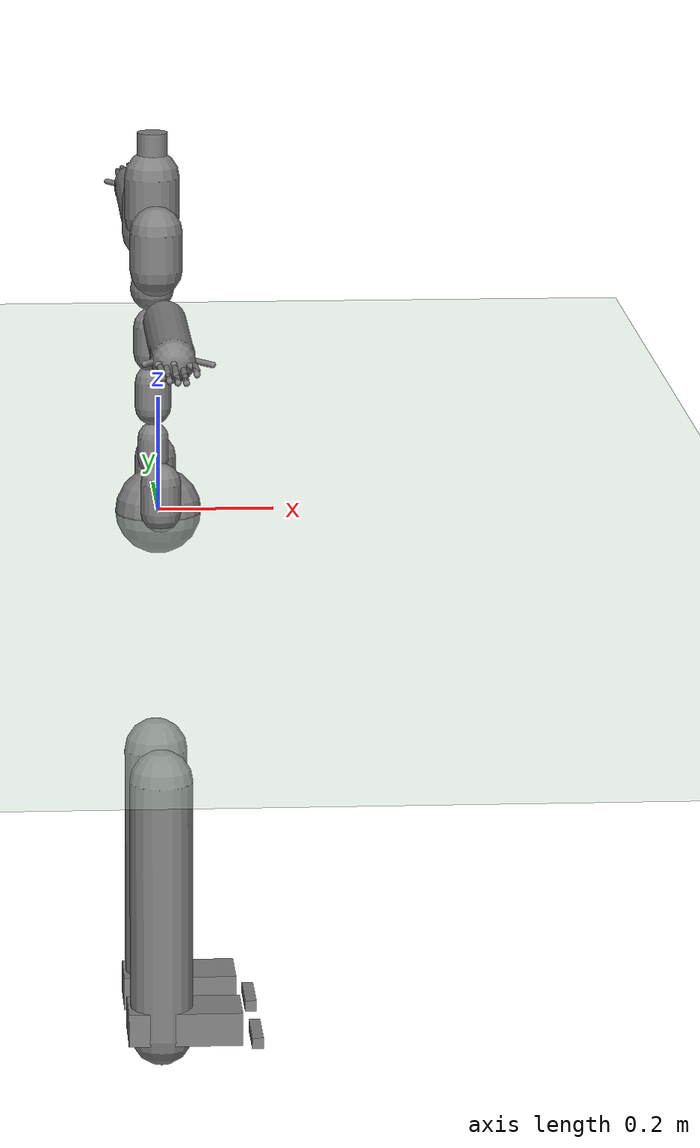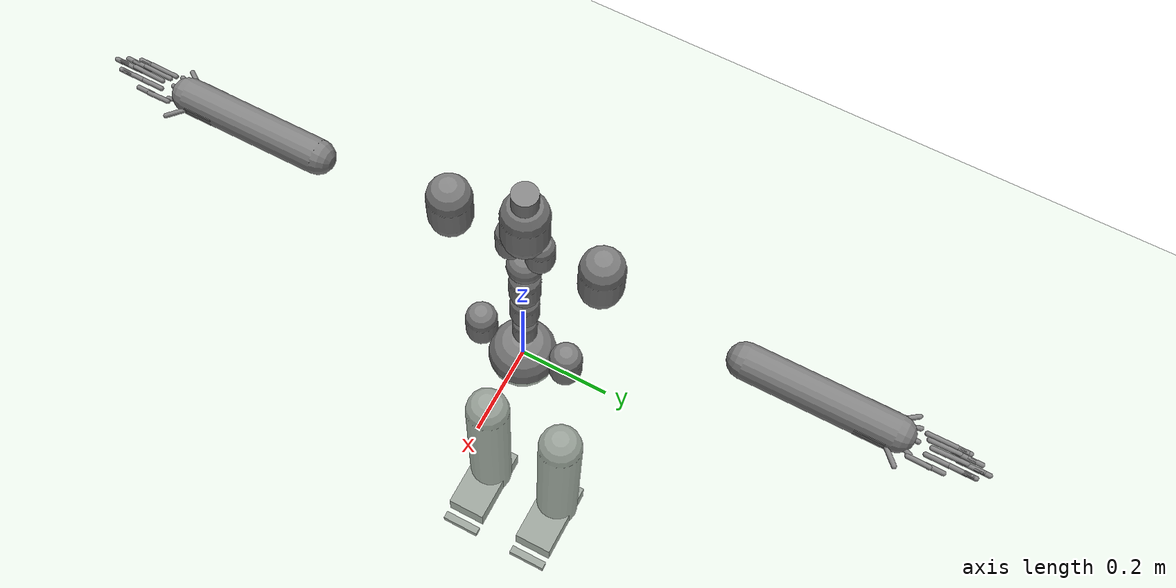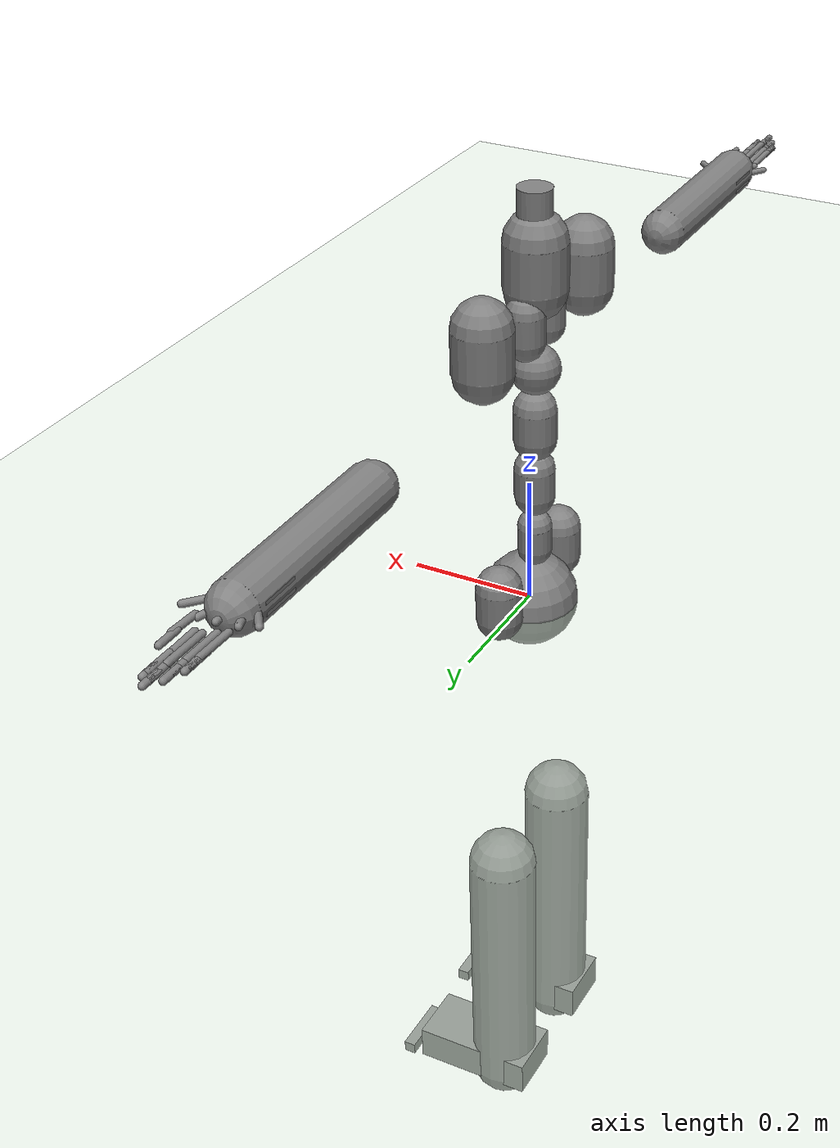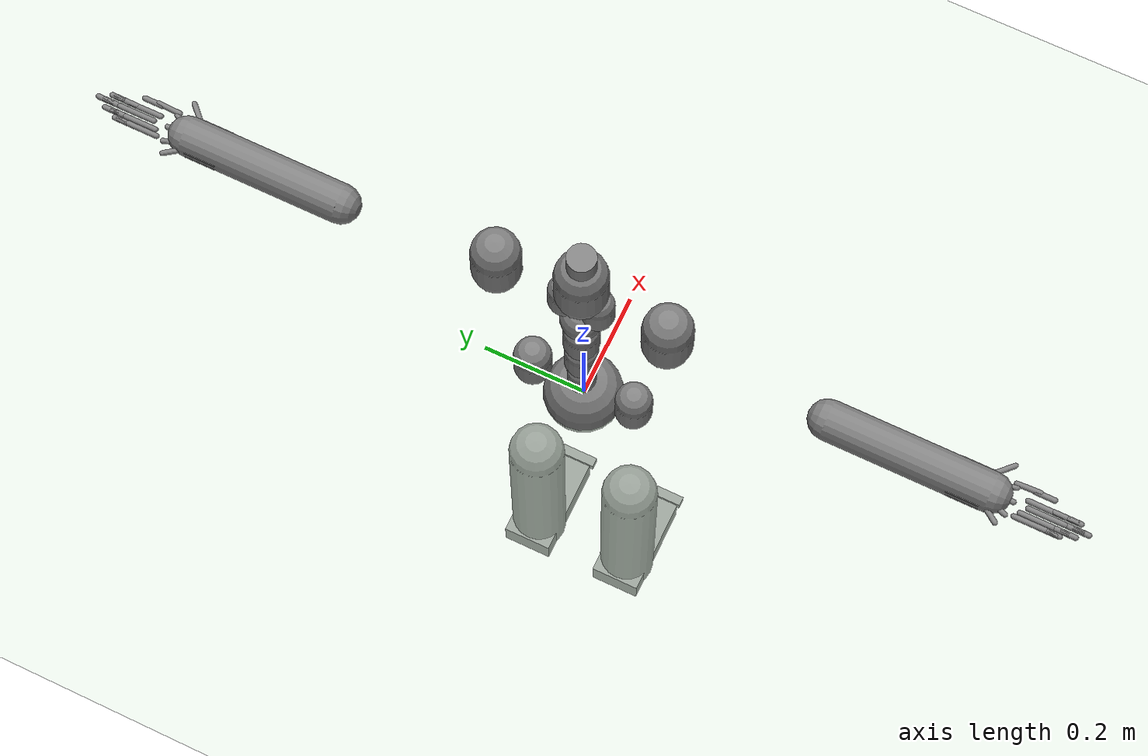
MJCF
<?xml version="1.0" ?>
<mujoco model="humanoid">
  <compiler coordinate="local"/>
  <statistic extent="2" center="0 0 1"/>
  <option timestep="0.00555"/>
  <default>
    <motor ctrlrange="-1 1" ctrllimited="true"/>
    <geom type="capsule" condim="1" friction="1.0 0.05 0.05" solimp=".9 .99 .003" solref=".015 1"/>
    <joint type="hinge" damping="0.1" stiffness="5" armature=".007" limited="true" solimplimit="0 .99 .01"/>
    <site size=".04" group="3"/>
  </default>
  <asset>
    <texture type="skybox" builtin="gradient" rgb1=".4 .5 .6" rgb2="0 0 0" width="100" height="100"/>
    <texture builtin="flat" height="1278" mark="cross" markrgb="1 1 1" name="texgeom" random="0.01" rgb1="0.8 0.6 0.4" rgb2="0.8 0.6 0.4" type="cube" width="127"/>
    <texture builtin="checker" height="100" name="texplane" rgb1="0 0 0" rgb2="0.8 0.8 0.8" type="2d" width="100"/>
    <material name="MatPlane" reflectance="0.5" shininess="1" specular="1" texrepeat="60 60" texture="texplane"/>
    <material name="geom" texture="texgeom" texuniform="true"/>
  </asset>
  <worldbody>
    <light cutoff="100" diffuse="1 1 1" dir="-0 0 -1.3" directional="true" exponent="1" pos="0 0 1.3" specular=".1 .1 .1"/>
    <geom conaffinity="1" condim="3" name="floor" pos="0 0 0" rgba="0.8 0.9 0.8 1" size="100 100 .2" type="plane" material="MatPlane"/>
    <body name="pHipOrigin" pos="0 0 0">
      <freejoint name="pHipOrigin"/>
      <geom type="sphere" contype="1" conaffinity="1" density="4629.6296296296305" size="0.07478" pos="0.0000 0.0000 -0.0000"/>
      <body name="jL5S1" pos="-0.00842625 0 0.07583605">
        <geom type="capsule" contype="1" conaffinity="1" density="1000" fromto="0 0 0.01526 0 0 0.05341" size="0.02671"/>
        <joint name="jL5S1_x" type="hinge" pos="0 0 0" axis="1 0 0" stiffness="500" damping="500" armature="0.02" range="-180.0000 180.0000"/>
        <joint name="jL5S1_y" type="hinge" pos="0 0 0" axis="0 1 0" stiffness="500" damping="500" armature="0.02" range="-180.0000 180.0000"/>
        <joint name="jL5S1_z" type="hinge" pos="0 0 0" axis="0 0 1" stiffness="500" damping="500" armature="0.02" range="-180.0000 180.0000"/>
        <body name="jL4L3" pos="0 0 0.08956236">
          <geom type="capsule" contype="1" conaffinity="1" density="1000" fromto="0 0 0.01791 0 0 0.06269" size="0.03135"/>
          <joint name="jL4L3_x" type="hinge" pos="0 0 0" axis="1 0 0" stiffness="500" damping="500" armature="0.02" range="-180.0000 180.0000"/>
          <joint name="jL4L3_y" type="hinge" pos="0 0 0" axis="0 1 0" stiffness="500" damping="500" armature="0.02" range="-180.0000 180.0000"/>
          <joint name="jL4L3_z" type="hinge" pos="0 0 0" axis="0 0 1" stiffness="500" damping="500" armature="0.02" range="-180.0000 180.0000"/>
          <body name="jL1T12" pos="-0.00072728 0 0.09426902">
            <geom type="capsule" contype="1" conaffinity="1" density="1000" fromto="0 0 0.01885 0 0 0.06599" size="0.03300"/>
            <joint name="jL1T12_x" type="hinge" pos="0 0 0" axis="1 0 0" stiffness="500" damping="500" armature="0.02" range="-180.0000 180.0000"/>
            <joint name="jL1T12_y" type="hinge" pos="0 0 0" axis="0 1 0" stiffness="500" damping="500" armature="0.02" range="-180.0000 180.0000"/>
            <joint name="jL1T12_z" type="hinge" pos="0 0 0" axis="0 0 1" stiffness="500" damping="500" armature="0.02" range="-180.0000 180.0000"/>
            <body name="jT9T8" pos="-0.00072870 0 0.09426839">
              <geom type="sphere" contype="1" conaffinity="1" density="1000" size="0.03771" pos="0.000 0.0000 0.037708"/>
              <joint name="jT9T8_x" type="hinge" pos="0 0 0" axis="1 0 0" stiffness="500" damping="500" armature="0.02" range="-180.0000 180.0000"/>
              <joint name="jT9T8_y" type="hinge" pos="0 0 0" axis="0 1 0" stiffness="500" damping="500" armature="0.02" range="-180.0000 180.0000"/>
              <joint name="jT9T8_z" type="hinge" pos="0 0 0" axis="0 0 1" stiffness="500" damping="500" armature="0.02" range="-180.0000 180.0000"/>
              <body name="jT1C7" pos="0 0 0.13635099">
                <geom type="capsule" contype="1" conaffinity="1" density="1000" fromto="0 0 0.02727 0 0 0.09545" size="0.04772"/>
                <joint name="jT1C7_x" type="hinge" pos="0 0 0" axis="1 0 0" stiffness="500" damping="500" armature="0.02" range="-180.0000 180.0000"/>
                <joint name="jT1C7_y" type="hinge" pos="0 0 0" axis="0 1 0" stiffness="500" damping="500" armature="0.02" range="-180.0000 180.0000"/>
                <joint name="jT1C7_z" type="hinge" pos="0 0 0" axis="0 0 1" stiffness="500" damping="500" armature="0.02" range="-180.0000 180.0000"/>
                <body name="jC1Head" pos="0.00102280 0 0.08669577">
                  <geom type="cylinder" contype="1" conaffinity="1" density="1000" fromto="0 0 0 0 0 0.08670" size="0.02601"/>
                  <joint name="jC1Head_x" type="hinge" pos="0 0 0" axis="1 0 0" stiffness="500" damping="500" armature="0.02" range="-180.0000 180.0000"/>
                  <joint name="jC1Head_y" type="hinge" pos="0 0 0" axis="0 1 0" stiffness="500" damping="500" armature="0.02" range="-180.0000 180.0000"/>
                  <joint name="jC1Head_z" type="hinge" pos="0 0 0" axis="0 0 1" stiffness="500" damping="500" armature="0.02" range="-180.0000 180.0000"/>
                </body>
              </body>
              <body name="jRightT4Shoulder" pos="0 -0.03173273 0.07737136">
                <geom type="capsule" contype="1" conaffinity="1" density="1000" fromto="0 0 0.01673 0 0 0.05854" size="0.02927"/>
                <joint name="jRightT4Shoulder_x" type="hinge" pos="0 0 0" axis="1 0 0" stiffness="500" damping="500" armature="0.02" range="-180.0000 180.0000"/>
                <joint name="jRightT4Shoulder_y" type="hinge" pos="0 0 0" axis="0 1 0" stiffness="500" damping="500" armature="0.02" range="-180.0000 180.0000"/>
                <joint name="jRightT4Shoulder_z" type="hinge" pos="0 0 0" axis="0 0 1" stiffness="500" damping="500" armature="0.02" range="-180.0000 180.0000"/>
                <body name="jRightShoulder" pos="0 -0.12825119 0">
                  <geom type="capsule" contype="1" conaffinity="1" density="1000" fromto="0 0 0.02565 0 0 0.08978" size="0.04489"/>
                  <joint name="jRightShoulder_x" type="hinge" pos="0 0 0" axis="1 0 0" stiffness="500" damping="500" armature="0.02" range="-180.0000 180.0000"/>
                  <joint name="jRightShoulder_y" type="hinge" pos="0 0 0" axis="0 1 0" stiffness="500" damping="500" armature="0.02" range="-180.0000 180.0000"/>
                  <joint name="jRightShoulder_z" type="hinge" pos="0 0 0" axis="0 0 1" stiffness="500" damping="500" armature="0.02" range="-180.0000 180.0000"/>
                  <body name="jRightElbow" pos="0 -0.29760003 0">
                    <geom type="capsule" contype="1" conaffinity="1" density="1000" fromto="0 0 0 0.00000000 -0.29760003 0.00000000" size="0.03571"/>
                    <joint name="jRightElbow_x" type="hinge" pos="0 0 0" axis="1 0 0" stiffness="500" damping="500" armature="0.02" range="-180.0000 180.0000"/>
                    <joint name="jRightElbow_y" type="hinge" pos="0 0 0" axis="0 1 0" stiffness="500" damping="500" armature="0.02" range="-180.0000 180.0000"/>
                    <joint name="jRightElbow_z" type="hinge" pos="0 0 0" axis="0 0 1" stiffness="500" damping="500" armature="0.02" range="-180.0000 180.0000"/>
                    <body name="jRightWrist" pos="0.00010347 -0.25707809 0">
                      <geom density="1000" type="box" pos="0 0 0" size="0.035 0.03 0.01" quat="1.0000 0.0000 0.0000 0.0000"/>
                      <joint name="jRightWrist_x" type="hinge" pos="0 0 0" axis="1 0 0" stiffness="500" damping="500" armature="0.02" range="-180.0000 180.0000"/>
                      <joint name="jRightWrist_y" type="hinge" pos="0 0 0" axis="0 1 0" stiffness="500" damping="500" armature="0.02" range="-180.0000 180.0000"/>
                      <joint name="jRightWrist_z" type="hinge" pos="0 0 0" axis="0 0 1" stiffness="500" damping="500" armature="0.02" range="-180.0000 180.0000"/>
                      <body name="jRightFirstCMC" pos="0.03041986 -0.02915914 -0.00137760">
                        <geom type="capsule" contype="1" conaffinity="1" density="1000" fromto="0 0 0 0.03041986 -0.02915914 -0.00137760" size="0.005"/>
                        <joint name="jRightFirstCMC_x" type="hinge" pos="0 0 0" axis="1 0 0" stiffness="500" damping="500" armature="0.02" range="-180.0000 180.0000"/>
                        <joint name="jRightFirstCMC_y" type="hinge" pos="0 0 0" axis="0 1 0" stiffness="500" damping="500" armature="0.02" range="-180.0000 180.0000"/>
                        <joint name="jRightFirstCMC_z" type="hinge" pos="0 0 0" axis="0 0 1" stiffness="500" damping="500" armature="0.02" range="-180.0000 180.0000"/>
                        <body name="jRightFirstMCP" pos="0.00152707 -0.04309282 0.00091055">
                          <geom type="capsule" contype="1" conaffinity="1" density="1000" fromto="0 0 0 0.00152707 -0.04309282 0.00091055" size="0.005"/>
                          <joint name="jRightFirstMCP_x" type="hinge" pos="0 0 0" axis="1 0 0" stiffness="500" damping="500" armature="0.02" range="-180.0000 180.0000"/>
                          <joint name="jRightFirstMCP_y" type="hinge" pos="0 0 0" axis="0 1 0" stiffness="500" damping="500" armature="0.02" range="-180.0000 180.0000"/>
                          <joint name="jRightFirstMCP_z" type="hinge" pos="0 0 0" axis="0 0 1" stiffness="500" damping="500" armature="0.02" range="-180.0000 180.0000"/>
                          <body name="jRightIP" pos="0 -0.03430765 0">
                            <geom type="capsule" contype="1" conaffinity="1" density="1000" fromto="0 0 0 0.00000000 -0.03430765 0.00000000" size="0.005"/>
                            <joint name="jRightIP_x" type="hinge" pos="0 0 0" axis="1 0 0" stiffness="500" damping="500" armature="0.02" range="-180.0000 180.0000"/>
                            <joint name="jRightIP_y" type="hinge" pos="0 0 0" axis="0 1 0" stiffness="500" damping="500" armature="0.02" range="-180.0000 180.0000"/>
                            <joint name="jRightIP_z" type="hinge" pos="0 0 0" axis="0 0 1" stiffness="500" damping="500" armature="0.02" range="-180.0000 180.0000"/>
                          </body>
                        </body>
                      </body>
                      <body name="jRightSecondCMC" pos="0.01296126 -0.03786869 -0.00066052">
                        <geom type="capsule" contype="1" conaffinity="1" density="1000" fromto="0 0 0 0.01296126 -0.03786869 -0.00066052" size="0.005"/>
                        <joint name="jRightSecondCMC_x" type="hinge" pos="0 0 0" axis="1 0 0" stiffness="500" damping="500" armature="0.02" range="-180.0000 180.0000"/>
                        <joint name="jRightSecondCMC_y" type="hinge" pos="0 0 0" axis="0 1 0" stiffness="500" damping="500" armature="0.02" range="-180.0000 180.0000"/>
                        <joint name="jRightSecondCMC_z" type="hinge" pos="0 0 0" axis="0 0 1" stiffness="500" damping="500" armature="0.02" range="-180.0000 180.0000"/>
                        <body name="jRightSecondMCP" pos="-0.00039427 -0.06288265 -0.00065230">
                          <geom type="capsule" contype="1" conaffinity="1" density="1000" fromto="0 0 0 -0.00039427 -0.06288265 -0.00065230" size="0.005"/>
                          <joint name="jRightSecondMCP_x" type="hinge" pos="0 0 0" axis="1 0 0" stiffness="500" damping="500" armature="0.02" range="-180.0000 180.0000"/>
                          <joint name="jRightSecondMCP_y" type="hinge" pos="0 0 0" axis="0 1 0" stiffness="500" damping="500" armature="0.02" range="-180.0000 180.0000"/>
                          <joint name="jRightSecondMCP_z" type="hinge" pos="0 0 0" axis="0 0 1" stiffness="500" damping="500" armature="0.02" range="-180.0000 180.0000"/>
                          <body name="jRightSecondPIP" pos="0 -0.04565525 0">
                            <geom type="capsule" contype="1" conaffinity="1" density="1000" fromto="0 0 0 0.00000000 -0.04565525 0.00000000" size="0.005"/>
                            <joint name="jRightSecondPIP_x" type="hinge" pos="0 0 0" axis="1 0 0" stiffness="500" damping="500" armature="0.02" range="-180.0000 180.0000"/>
                            <joint name="jRightSecondPIP_y" type="hinge" pos="0 0 0" axis="0 1 0" stiffness="500" damping="500" armature="0.02" range="-180.0000 180.0000"/>
                            <joint name="jRightSecondPIP_z" type="hinge" pos="0 0 0" axis="0 0 1" stiffness="500" damping="500" armature="0.02" range="-180.0000 180.0000"/>
                            <body name="jRightSecondDIP" pos="0 -0.02491336 0">
                              <geom type="capsule" contype="1" conaffinity="1" density="1000" fromto="0 0 0 0.00000000 -0.02491336 0.00000000" size="0.005"/>
                              <joint name="jRightSecondDIP_x" type="hinge" pos="0 0 0" axis="1 0 0" stiffness="500" damping="500" armature="0.02" range="-180.0000 180.0000"/>
                              <joint name="jRightSecondDIP_y" type="hinge" pos="0 0 0" axis="0 1 0" stiffness="500" damping="500" armature="0.02" range="-180.0000 180.0000"/>
                              <joint name="jRightSecondDIP_z" type="hinge" pos="0 0 0" axis="0 0 1" stiffness="500" damping="500" armature="0.02" range="-180.0000 180.0000"/>
                            </body>
                          </body>
                        </body>
                      </body>
                      <body name="jRightThirdCMC" pos="-0.00073716 -0.03986366 0.00167593">
                        <geom type="capsule" contype="1" conaffinity="1" density="1000" fromto="0 0 0 -0.00073716 -0.03986366 0.00167593" size="0.005"/>
                        <joint name="jRightThirdCMC_x" type="hinge" pos="0 0 0" axis="1 0 0" stiffness="500" damping="500" armature="0.02" range="-180.0000 180.0000"/>
                        <joint name="jRightThirdCMC_y" type="hinge" pos="0 0 0" axis="0 1 0" stiffness="500" damping="500" armature="0.02" range="-180.0000 180.0000"/>
                        <joint name="jRightThirdCMC_z" type="hinge" pos="0 0 0" axis="0 0 1" stiffness="500" damping="500" armature="0.02" range="-180.0000 180.0000"/>
                        <body name="jRightThirdMCP" pos="-0.00079730 -0.06605665 0.00179715">
                          <geom type="capsule" contype="1" conaffinity="1" density="1000" fromto="0 0 0 -0.00079730 -0.06605665 0.00179715" size="0.005"/>
                          <joint name="jRightThirdMCP_x" type="hinge" pos="0 0 0" axis="1 0 0" stiffness="500" damping="500" armature="0.02" range="-180.0000 180.0000"/>
                          <joint name="jRightThirdMCP_y" type="hinge" pos="0 0 0" axis="0 1 0" stiffness="500" damping="500" armature="0.02" range="-180.0000 180.0000"/>
                          <joint name="jRightThirdMCP_z" type="hinge" pos="0 0 0" axis="0 0 1" stiffness="500" damping="500" armature="0.02" range="-180.0000 180.0000"/>
                          <body name="jRightThirdPIP" pos="0 -0.04998649 0">
                            <geom type="capsule" contype="1" conaffinity="1" density="1000" fromto="0 0 0 0.00000000 -0.04998649 0.00000000" size="0.005"/>
                            <joint name="jRightThirdPIP_x" type="hinge" pos="0 0 0" axis="1 0 0" stiffness="500" damping="500" armature="0.02" range="-180.0000 180.0000"/>
                            <joint name="jRightThirdPIP_y" type="hinge" pos="0 0 0" axis="0 1 0" stiffness="500" damping="500" armature="0.02" range="-180.0000 180.0000"/>
                            <joint name="jRightThirdPIP_z" type="hinge" pos="0 0 0" axis="0 0 1" stiffness="500" damping="500" armature="0.02" range="-180.0000 180.0000"/>
                            <body name="jRightThirdDIP" pos="0 -0.02953194 0">
                              <geom type="capsule" contype="1" conaffinity="1" density="1000" fromto="0 0 0 0.00000000 -0.02953194 0.00000000" size="0.005"/>
                              <joint name="jRightThirdDIP_x" type="hinge" pos="0 0 0" axis="1 0 0" stiffness="500" damping="500" armature="0.02" range="-180.0000 180.0000"/>
                              <joint name="jRightThirdDIP_y" type="hinge" pos="0 0 0" axis="0 1 0" stiffness="500" damping="500" armature="0.02" range="-180.0000 180.0000"/>
                              <joint name="jRightThirdDIP_z" type="hinge" pos="0 0 0" axis="0 0 1" stiffness="500" damping="500" armature="0.02" range="-180.0000 180.0000"/>
                            </body>
                          </body>
                        </body>
                      </body>
                      <body name="jRightFourthCMC" pos="-0.01351363 -0.03763769 0.00088593">
                        <geom type="capsule" contype="1" conaffinity="1" density="1000" fromto="0 0 0 -0.01351363 -0.03763769 0.00088593" size="0.005"/>
                        <joint name="jRightFourthCMC_x" type="hinge" pos="0 0 0" axis="1 0 0" stiffness="500" damping="500" armature="0.02" range="-180.0000 180.0000"/>
                        <joint name="jRightFourthCMC_y" type="hinge" pos="0 0 0" axis="0 1 0" stiffness="500" damping="500" armature="0.02" range="-180.0000 180.0000"/>
                        <joint name="jRightFourthCMC_z" type="hinge" pos="0 0 0" axis="0 0 1" stiffness="500" damping="500" armature="0.02" range="-180.0000 180.0000"/>
                        <body name="jRightFourthMCP" pos="-0.00042882 -0.05877422 0.00092339">
                          <geom type="capsule" contype="1" conaffinity="1" density="1000" fromto="0 0 0 -0.00042882 -0.05877422 0.00092339" size="0.005"/>
                          <joint name="jRightFourthMCP_x" type="hinge" pos="0 0 0" axis="1 0 0" stiffness="500" damping="500" armature="0.02" range="-180.0000 180.0000"/>
                          <joint name="jRightFourthMCP_y" type="hinge" pos="0 0 0" axis="0 1 0" stiffness="500" damping="500" armature="0.02" range="-180.0000 180.0000"/>
                          <joint name="jRightFourthMCP_z" type="hinge" pos="0 0 0" axis="0 0 1" stiffness="500" damping="500" armature="0.02" range="-180.0000 180.0000"/>
                          <body name="jRightFourthPIP" pos="0 -0.04383249 0">
                            <geom type="capsule" contype="1" conaffinity="1" density="1000" fromto="0 0 0 0.00000000 -0.04383249 0.00000000" size="0.005"/>
                            <joint name="jRightFourthPIP_x" type="hinge" pos="0 0 0" axis="1 0 0" stiffness="500" damping="500" armature="0.02" range="-180.0000 180.0000"/>
                            <joint name="jRightFourthPIP_y" type="hinge" pos="0 0 0" axis="0 1 0" stiffness="500" damping="500" armature="0.02" range="-180.0000 180.0000"/>
                            <joint name="jRightFourthPIP_z" type="hinge" pos="0 0 0" axis="0 0 1" stiffness="500" damping="500" armature="0.02" range="-180.0000 180.0000"/>
                            <body name="jRightFourthDIP" pos="0 -0.02808477 0">
                              <geom type="capsule" contype="1" conaffinity="1" density="1000" fromto="0 0 0 0.00000000 -0.02808477 0.00000000" size="0.005"/>
                              <joint name="jRightFourthDIP_x" type="hinge" pos="0 0 0" axis="1 0 0" stiffness="500" damping="500" armature="0.02" range="-180.0000 180.0000"/>
                              <joint name="jRightFourthDIP_y" type="hinge" pos="0 0 0" axis="0 1 0" stiffness="500" damping="500" armature="0.02" range="-180.0000 180.0000"/>
                              <joint name="jRightFourthDIP_z" type="hinge" pos="0 0 0" axis="0 0 1" stiffness="500" damping="500" armature="0.02" range="-180.0000 180.0000"/>
                            </body>
                          </body>
                        </body>
                      </body>
                      <body name="jRightFifthCMC" pos="-0.02358103 -0.03285747 0.00064817">
                        <geom type="capsule" contype="1" conaffinity="1" density="1000" fromto="0 0 0 -0.02358103 -0.03285747 0.00064817" size="0.005"/>
                        <joint name="jRightFifthCMC_x" type="hinge" pos="0 0 0" axis="1 0 0" stiffness="500" damping="500" armature="0.02" range="-180.0000 180.0000"/>
                        <joint name="jRightFifthCMC_y" type="hinge" pos="0 0 0" axis="0 1 0" stiffness="500" damping="500" armature="0.02" range="-180.0000 180.0000"/>
                        <joint name="jRightFifthCMC_z" type="hinge" pos="0 0 0" axis="0 0 1" stiffness="500" damping="500" armature="0.02" range="-180.0000 180.0000"/>
                        <body name="jRightFifthMCP" pos="-0.00000834 -0.05646447 0.00077702">
                          <geom type="capsule" contype="1" conaffinity="1" density="1000" fromto="0 0 0 -0.00000834 -0.05646447 0.00077702" size="0.005"/>
                          <joint name="jRightFifthMCP_x" type="hinge" pos="0 0 0" axis="1 0 0" stiffness="500" damping="500" armature="0.02" range="-180.0000 180.0000"/>
                          <joint name="jRightFifthMCP_y" type="hinge" pos="0 0 0" axis="0 1 0" stiffness="500" damping="500" armature="0.02" range="-180.0000 180.0000"/>
                          <joint name="jRightFifthMCP_z" type="hinge" pos="0 0 0" axis="0 0 1" stiffness="500" damping="500" armature="0.02" range="-180.0000 180.0000"/>
                          <body name="jRightFifthPIP" pos="0 -0.03950690 0">
                            <geom type="capsule" contype="1" conaffinity="1" density="1000" fromto="0 0 0 0.00000000 -0.03950690 0.00000000" size="0.005"/>
                            <joint name="jRightFifthPIP_x" type="hinge" pos="0 0 0" axis="1 0 0" stiffness="500" damping="500" armature="0.02" range="-180.0000 180.0000"/>
                            <joint name="jRightFifthPIP_y" type="hinge" pos="0 0 0" axis="0 1 0" stiffness="500" damping="500" armature="0.02" range="-180.0000 180.0000"/>
                            <joint name="jRightFifthPIP_z" type="hinge" pos="0 0 0" axis="0 0 1" stiffness="500" damping="500" armature="0.02" range="-180.0000 180.0000"/>
                            <body name="jRightFifthDIP" pos="0 -0.02148065 0">
                              <geom type="capsule" contype="1" conaffinity="1" density="1000" fromto="0 0 0 0.00000000 -0.02148065 0.00000000" size="0.005"/>
                              <joint name="jRightFifthDIP_x" type="hinge" pos="0 0 0" axis="1 0 0" stiffness="500" damping="500" armature="0.02" range="-180.0000 180.0000"/>
                              <joint name="jRightFifthDIP_y" type="hinge" pos="0 0 0" axis="0 1 0" stiffness="500" damping="500" armature="0.02" range="-180.0000 180.0000"/>
                              <joint name="jRightFifthDIP_z" type="hinge" pos="0 0 0" axis="0 0 1" stiffness="500" damping="500" armature="0.02" range="-180.0000 180.0000"/>
                            </body>
                          </body>
                        </body>
                      </body>
                    </body>
                  </body>
                </body>
              </body>
              <body name="jLeftT4Shoulder" pos="0 0.03175301 0.07742081">
                <geom type="capsule" contype="1" conaffinity="1" density="1000" fromto="0 0 0.01674 0 0 0.05858" size="0.02929"/>
                <joint name="jLeftT4Shoulder_x" type="hinge" pos="0 0 0" axis="1 0 0" stiffness="500" damping="500" armature="0.02" range="-180.0000 180.0000"/>
                <joint name="jLeftT4Shoulder_y" type="hinge" pos="0 0 0" axis="0 1 0" stiffness="500" damping="500" armature="0.02" range="-180.0000 180.0000"/>
                <joint name="jLeftT4Shoulder_z" type="hinge" pos="0 0 0" axis="0 0 1" stiffness="500" damping="500" armature="0.02" range="-180.0000 180.0000"/>
                <body name="jLeftShoulder" pos="0 0.12741733 0">
                  <geom type="capsule" contype="1" conaffinity="1" density="1000" fromto="0 0 0.02548 0 0 0.08919" size="0.04460"/>
                  <joint name="jLeftShoulder_x" type="hinge" pos="0 0 0" axis="1 0 0" stiffness="500" damping="500" armature="0.02" range="-180.0000 180.0000"/>
                  <joint name="jLeftShoulder_y" type="hinge" pos="0 0 0" axis="0 1 0" stiffness="500" damping="500" armature="0.02" range="-180.0000 180.0000"/>
                  <joint name="jLeftShoulder_z" type="hinge" pos="0 0 0" axis="0 0 1" stiffness="500" damping="500" armature="0.02" range="-180.0000 180.0000"/>
                  <body name="jLeftElbow" pos="0 0.29760593 0">
                    <geom type="capsule" contype="1" conaffinity="1" density="1000" fromto="0 0 0 0.00000000 0.29760593 0.00000000" size="0.03571"/>
                    <joint name="jLeftElbow_x" type="hinge" pos="0 0 0" axis="1 0 0" stiffness="500" damping="500" armature="0.02" range="-180.0000 180.0000"/>
                    <joint name="jLeftElbow_y" type="hinge" pos="0 0 0" axis="0 1 0" stiffness="500" damping="500" armature="0.02" range="-180.0000 180.0000"/>
                    <joint name="jLeftElbow_z" type="hinge" pos="0 0 0" axis="0 0 1" stiffness="500" damping="500" armature="0.02" range="-180.0000 180.0000"/>
                    <body name="jLeftWrist" pos="0.00010358 0.25735423 0">
                      <geom density="1000" type="box" pos="0 0 0" size="0.035 0.03 0.01" quat="1.0000 0.0000 0.0000 0.0000"/>
                      <joint name="jLeftWrist_x" type="hinge" pos="0 0 0" axis="1 0 0" stiffness="500" damping="500" armature="0.02" range="-180.0000 180.0000"/>
                      <joint name="jLeftWrist_y" type="hinge" pos="0 0 0" axis="0 1 0" stiffness="500" damping="500" armature="0.02" range="-180.0000 180.0000"/>
                      <joint name="jLeftWrist_z" type="hinge" pos="0 0 0" axis="0 0 1" stiffness="500" damping="500" armature="0.02" range="-180.0000 180.0000"/>
                      <body name="jLeftFirstCMC" pos="0.02977388 0.02984419 -0.00133258">
                        <geom type="capsule" contype="1" conaffinity="1" density="1000" fromto="0 0 0 0.02977388 0.02984419 -0.00133258" size="0.005"/>
                        <joint name="jLeftFirstCMC_x" type="hinge" pos="0 0 0" axis="1 0 0" stiffness="500" damping="500" armature="0.02" range="-180.0000 180.0000"/>
                        <joint name="jLeftFirstCMC_y" type="hinge" pos="0 0 0" axis="0 1 0" stiffness="500" damping="500" armature="0.02" range="-180.0000 180.0000"/>
                        <joint name="jLeftFirstCMC_z" type="hinge" pos="0 0 0" axis="0 0 1" stiffness="500" damping="500" armature="0.02" range="-180.0000 180.0000"/>
                        <body name="jLeftFirstMCP" pos="0.00151236 0.04309184 0.00088736">
                          <geom type="capsule" contype="1" conaffinity="1" density="1000" fromto="0 0 0 0.00151236 0.04309184 0.00088736" size="0.005"/>
                          <joint name="jLeftFirstMCP_x" type="hinge" pos="0 0 0" axis="1 0 0" stiffness="500" damping="500" armature="0.02" range="-180.0000 180.0000"/>
                          <joint name="jLeftFirstMCP_y" type="hinge" pos="0 0 0" axis="0 1 0" stiffness="500" damping="500" armature="0.02" range="-180.0000 180.0000"/>
                          <joint name="jLeftFirstMCP_z" type="hinge" pos="0 0 0" axis="0 0 1" stiffness="500" damping="500" armature="0.02" range="-180.0000 180.0000"/>
                          <body name="jLeftIP" pos="0 0.03430765 0">
                            <geom type="capsule" contype="1" conaffinity="1" density="1000" fromto="0 0 0 0.00000000 0.03430765 0.00000000" size="0.005"/>
                            <joint name="jLeftIP_x" type="hinge" pos="0 0 0" axis="1 0 0" stiffness="500" damping="500" armature="0.02" range="-180.0000 180.0000"/>
                            <joint name="jLeftIP_y" type="hinge" pos="0 0 0" axis="0 1 0" stiffness="500" damping="500" armature="0.02" range="-180.0000 180.0000"/>
                            <joint name="jLeftIP_z" type="hinge" pos="0 0 0" axis="0 0 1" stiffness="500" damping="500" armature="0.02" range="-180.0000 180.0000"/>
                          </body>
                        </body>
                      </body>
                      <body name="jLeftSecondCMC" pos="0.01311055 0.03779902 -0.00066598">
                        <geom type="capsule" contype="1" conaffinity="1" density="1000" fromto="0 0 0 0.01311055 0.03779902 -0.00066598" size="0.005"/>
                        <joint name="jLeftSecondCMC_x" type="hinge" pos="0 0 0" axis="1 0 0" stiffness="500" damping="500" armature="0.02" range="-180.0000 180.0000"/>
                        <joint name="jLeftSecondCMC_y" type="hinge" pos="0 0 0" axis="0 1 0" stiffness="500" damping="500" armature="0.02" range="-180.0000 180.0000"/>
                        <joint name="jLeftSecondCMC_z" type="hinge" pos="0 0 0" axis="0 0 1" stiffness="500" damping="500" armature="0.02" range="-180.0000 180.0000"/>
                        <body name="jLeftSecondMCP" pos="-0.00034377 0.06288394 -0.00066036">
                          <geom type="capsule" contype="1" conaffinity="1" density="1000" fromto="0 0 0 -0.00034377 0.06288394 -0.00066036" size="0.005"/>
                          <joint name="jLeftSecondMCP_x" type="hinge" pos="0 0 0" axis="1 0 0" stiffness="500" damping="500" armature="0.02" range="-180.0000 180.0000"/>
                          <joint name="jLeftSecondMCP_y" type="hinge" pos="0 0 0" axis="0 1 0" stiffness="500" damping="500" armature="0.02" range="-180.0000 180.0000"/>
                          <joint name="jLeftSecondMCP_z" type="hinge" pos="0 0 0" axis="0 0 1" stiffness="500" damping="500" armature="0.02" range="-180.0000 180.0000"/>
                          <body name="jLeftSecondPIP" pos="0 0.04565525 0">
                            <geom type="capsule" contype="1" conaffinity="1" density="1000" fromto="0 0 0 0.00000000 0.04565525 0.00000000" size="0.005"/>
                            <joint name="jLeftSecondPIP_x" type="hinge" pos="0 0 0" axis="1 0 0" stiffness="500" damping="500" armature="0.02" range="-180.0000 180.0000"/>
                            <joint name="jLeftSecondPIP_y" type="hinge" pos="0 0 0" axis="0 1 0" stiffness="500" damping="500" armature="0.02" range="-180.0000 180.0000"/>
                            <joint name="jLeftSecondPIP_z" type="hinge" pos="0 0 0" axis="0 0 1" stiffness="500" damping="500" armature="0.02" range="-180.0000 180.0000"/>
                            <body name="jLeftSecondDIP" pos="0 0.02491336 0">
                              <geom type="capsule" contype="1" conaffinity="1" density="1000" fromto="0 0 0 0.00000000 0.02491336 0.00000000" size="0.005"/>
                              <joint name="jLeftSecondDIP_x" type="hinge" pos="0 0 0" axis="1 0 0" stiffness="500" damping="500" armature="0.02" range="-180.0000 180.0000"/>
                              <joint name="jLeftSecondDIP_y" type="hinge" pos="0 0 0" axis="0 1 0" stiffness="500" damping="500" armature="0.02" range="-180.0000 180.0000"/>
                              <joint name="jLeftSecondDIP_z" type="hinge" pos="0 0 0" axis="0 0 1" stiffness="500" damping="500" armature="0.02" range="-180.0000 180.0000"/>
                            </body>
                          </body>
                        </body>
                      </body>
                      <body name="jLeftThirdCMC" pos="-0.00074148 0.03986724 0.00162006">
                        <geom type="capsule" contype="1" conaffinity="1" density="1000" fromto="0 0 0 -0.00074148 0.03986724 0.00162006" size="0.005"/>
                        <joint name="jLeftThirdCMC_x" type="hinge" pos="0 0 0" axis="1 0 0" stiffness="500" damping="500" armature="0.02" range="-180.0000 180.0000"/>
                        <joint name="jLeftThirdCMC_y" type="hinge" pos="0 0 0" axis="0 1 0" stiffness="500" damping="500" armature="0.02" range="-180.0000 180.0000"/>
                        <joint name="jLeftThirdCMC_z" type="hinge" pos="0 0 0" axis="0 0 1" stiffness="500" damping="500" armature="0.02" range="-180.0000 180.0000"/>
                        <body name="jLeftThirdMCP" pos="-0.00080374 0.06605794 0.00176102">
                          <geom type="capsule" contype="1" conaffinity="1" density="1000" fromto="0 0 0 -0.00080374 0.06605794 0.00176102" size="0.005"/>
                          <joint name="jLeftThirdMCP_x" type="hinge" pos="0 0 0" axis="1 0 0" stiffness="500" damping="500" armature="0.02" range="-180.0000 180.0000"/>
                          <joint name="jLeftThirdMCP_y" type="hinge" pos="0 0 0" axis="0 1 0" stiffness="500" damping="500" armature="0.02" range="-180.0000 180.0000"/>
                          <joint name="jLeftThirdMCP_z" type="hinge" pos="0 0 0" axis="0 0 1" stiffness="500" damping="500" armature="0.02" range="-180.0000 180.0000"/>
                          <body name="jLeftThirdPIP" pos="0 0.04998649 0">
                            <geom type="capsule" contype="1" conaffinity="1" density="1000" fromto="0 0 0 0.00000000 0.04998649 0.00000000" size="0.005"/>
                            <joint name="jLeftThirdPIP_x" type="hinge" pos="0 0 0" axis="1 0 0" stiffness="500" damping="500" armature="0.02" range="-180.0000 180.0000"/>
                            <joint name="jLeftThirdPIP_y" type="hinge" pos="0 0 0" axis="0 1 0" stiffness="500" damping="500" armature="0.02" range="-180.0000 180.0000"/>
                            <joint name="jLeftThirdPIP_z" type="hinge" pos="0 0 0" axis="0 0 1" stiffness="500" damping="500" armature="0.02" range="-180.0000 180.0000"/>
                            <body name="jLeftThirdDIP" pos="0 0.02953194 0">
                              <geom type="capsule" contype="1" conaffinity="1" density="1000" fromto="0 0 0 0.00000000 0.02953194 0.00000000" size="0.005"/>
                              <joint name="jLeftThirdDIP_x" type="hinge" pos="0 0 0" axis="1 0 0" stiffness="500" damping="500" armature="0.02" range="-180.0000 180.0000"/>
                              <joint name="jLeftThirdDIP_y" type="hinge" pos="0 0 0" axis="0 1 0" stiffness="500" damping="500" armature="0.02" range="-180.0000 180.0000"/>
                              <joint name="jLeftThirdDIP_z" type="hinge" pos="0 0 0" axis="0 0 1" stiffness="500" damping="500" armature="0.02" range="-180.0000 180.0000"/>
                            </body>
                          </body>
                        </body>
                      </body>
                      <body name="jLeftFourthCMC" pos="-0.01400949 0.03744517 0.00094572">
                        <geom type="capsule" contype="1" conaffinity="1" density="1000" fromto="0 0 0 -0.01400949 0.03744517 0.00094572" size="0.005"/>
                        <joint name="jLeftFourthCMC_x" type="hinge" pos="0 0 0" axis="1 0 0" stiffness="500" damping="500" armature="0.02" range="-180.0000 180.0000"/>
                        <joint name="jLeftFourthCMC_y" type="hinge" pos="0 0 0" axis="0 1 0" stiffness="500" damping="500" armature="0.02" range="-180.0000 180.0000"/>
                        <joint name="jLeftFourthCMC_z" type="hinge" pos="0 0 0" axis="0 0 1" stiffness="500" damping="500" armature="0.02" range="-180.0000 180.0000"/>
                        <body name="jLeftFourthMCP" pos="-0.00046116 0.05877085 0.00097659">
                          <geom type="capsule" contype="1" conaffinity="1" density="1000" fromto="0 0 0 -0.00046116 0.05877085 0.00097659" size="0.005"/>
                          <joint name="jLeftFourthMCP_x" type="hinge" pos="0 0 0" axis="1 0 0" stiffness="500" damping="500" armature="0.02" range="-180.0000 180.0000"/>
                          <joint name="jLeftFourthMCP_y" type="hinge" pos="0 0 0" axis="0 1 0" stiffness="500" damping="500" armature="0.02" range="-180.0000 180.0000"/>
                          <joint name="jLeftFourthMCP_z" type="hinge" pos="0 0 0" axis="0 0 1" stiffness="500" damping="500" armature="0.02" range="-180.0000 180.0000"/>
                          <body name="jLeftFourthPIP" pos="0 0.04383249 0">
                            <geom type="capsule" contype="1" conaffinity="1" density="1000" fromto="0 0 0 0.00000000 0.04383249 0.00000000" size="0.005"/>
                            <joint name="jLeftFourthPIP_x" type="hinge" pos="0 0 0" axis="1 0 0" stiffness="500" damping="500" armature="0.02" range="-180.0000 180.0000"/>
                            <joint name="jLeftFourthPIP_y" type="hinge" pos="0 0 0" axis="0 1 0" stiffness="500" damping="500" armature="0.02" range="-180.0000 180.0000"/>
                            <joint name="jLeftFourthPIP_z" type="hinge" pos="0 0 0" axis="0 0 1" stiffness="500" damping="500" armature="0.02" range="-180.0000 180.0000"/>
                            <body name="jLeftFourthDIP" pos="0 0.02808477 0">
                              <geom type="capsule" contype="1" conaffinity="1" density="1000" fromto="0 0 0 0.00000000 0.02808477 0.00000000" size="0.005"/>
                              <joint name="jLeftFourthDIP_x" type="hinge" pos="0 0 0" axis="1 0 0" stiffness="500" damping="500" armature="0.02" range="-180.0000 180.0000"/>
                              <joint name="jLeftFourthDIP_y" type="hinge" pos="0 0 0" axis="0 1 0" stiffness="500" damping="500" armature="0.02" range="-180.0000 180.0000"/>
                              <joint name="jLeftFourthDIP_z" type="hinge" pos="0 0 0" axis="0 0 1" stiffness="500" damping="500" armature="0.02" range="-180.0000 180.0000"/>
                            </body>
                          </body>
                        </body>
                      </body>
                      <body name="jLeftFifthCMC" pos="-0.02429539 0.03233802 0.00065859">
                        <geom type="capsule" contype="1" conaffinity="1" density="1000" fromto="0 0 0 -0.02429539 0.03233802 0.00065859" size="0.005"/>
                        <joint name="jLeftFifthCMC_x" type="hinge" pos="0 0 0" axis="1 0 0" stiffness="500" damping="500" armature="0.02" range="-180.0000 180.0000"/>
                        <joint name="jLeftFifthCMC_y" type="hinge" pos="0 0 0" axis="0 1 0" stiffness="500" damping="500" armature="0.02" range="-180.0000 180.0000"/>
                        <joint name="jLeftFifthCMC_z" type="hinge" pos="0 0 0" axis="0 0 1" stiffness="500" damping="500" armature="0.02" range="-180.0000 180.0000"/>
                        <body name="jLeftFifthMCP" pos="-0.00001601 0.05646293 0.00081247">
                          <geom type="capsule" contype="1" conaffinity="1" density="1000" fromto="0 0 0 -0.00001601 0.05646293 0.00081247" size="0.005"/>
                          <joint name="jLeftFifthMCP_x" type="hinge" pos="0 0 0" axis="1 0 0" stiffness="500" damping="500" armature="0.02" range="-180.0000 180.0000"/>
                          <joint name="jLeftFifthMCP_y" type="hinge" pos="0 0 0" axis="0 1 0" stiffness="500" damping="500" armature="0.02" range="-180.0000 180.0000"/>
                          <joint name="jLeftFifthMCP_z" type="hinge" pos="0 0 0" axis="0 0 1" stiffness="500" damping="500" armature="0.02" range="-180.0000 180.0000"/>
                          <body name="jLeftFifthPIP" pos="0 0.03950690 0">
                            <geom type="capsule" contype="1" conaffinity="1" density="1000" fromto="0 0 0 0.00000000 0.03950690 0.00000000" size="0.005"/>
                            <joint name="jLeftFifthPIP_x" type="hinge" pos="0 0 0" axis="1 0 0" stiffness="500" damping="500" armature="0.02" range="-180.0000 180.0000"/>
                            <joint name="jLeftFifthPIP_y" type="hinge" pos="0 0 0" axis="0 1 0" stiffness="500" damping="500" armature="0.02" range="-180.0000 180.0000"/>
                            <joint name="jLeftFifthPIP_z" type="hinge" pos="0 0 0" axis="0 0 1" stiffness="500" damping="500" armature="0.02" range="-180.0000 180.0000"/>
                            <body name="jLeftFifthDIP" pos="0 0.02148065 0">
                              <geom type="capsule" contype="1" conaffinity="1" density="1000" fromto="0 0 0 0.00000000 0.02148065 0.00000000" size="0.005"/>
                              <joint name="jLeftFifthDIP_x" type="hinge" pos="0 0 0" axis="1 0 0" stiffness="500" damping="500" armature="0.02" range="-180.0000 180.0000"/>
                              <joint name="jLeftFifthDIP_y" type="hinge" pos="0 0 0" axis="0 1 0" stiffness="500" damping="500" armature="0.02" range="-180.0000 180.0000"/>
                              <joint name="jLeftFifthDIP_z" type="hinge" pos="0 0 0" axis="0 0 1" stiffness="500" damping="500" armature="0.02" range="-180.0000 180.0000"/>
                            </body>
                          </body>
                        </body>
                      </body>
                    </body>
                  </body>
                </body>
              </body>
            </body>
          </body>
        </body>
      </body>
      <body name="jRightHip" pos="-0.00016892 -0.10024735 0.00152072">
        <geom type="capsule" contype="1" conaffinity="1" density="1000" fromto="0 0 0.02005 0 0 0.07018" size="0.03509"/>
        <joint name="jRightHip_x" type="hinge" pos="0 0 0" axis="1 0 0" stiffness="500" damping="500" armature="0.02" range="-180.0000 180.0000"/>
        <joint name="jRightHip_y" type="hinge" pos="0 0 0" axis="0 1 0" stiffness="500" damping="500" armature="0.02" range="-180.0000 180.0000"/>
        <joint name="jRightHip_z" type="hinge" pos="0 0 0" axis="0 0 1" stiffness="500" damping="500" armature="0.02" range="-180.0000 180.0000"/>
        <body name="jRightKnee" pos="0.00005526 0 -0.46347716">
          <geom type="capsule" contype="1" conaffinity="1" density="1000" fromto="0 0 0 0.00005526 0.00000000 -0.46347716" size="0.05562"/>
          <joint name="jRightKnee_x" type="hinge" pos="0 0 0" axis="1 0 0" stiffness="500" damping="500" armature="0.02" range="-180.0000 180.0000"/>
          <joint name="jRightKnee_y" type="hinge" pos="0 0 0" axis="0 1 0" stiffness="500" damping="500" armature="0.02" range="-180.0000 180.0000"/>
          <joint name="jRightKnee_z" type="hinge" pos="0 0 0" axis="0 0 1" stiffness="500" damping="500" armature="0.02" range="-180.0000 180.0000"/>
          <body name="jRightAnkle" pos="0.00046443 0 -0.41131563">
            <geom density="1000" type="box" pos="0.04 0. -0.03" size="0.1 0.05 0.03" quat="1.0 0 0 0"/>
            <joint name="jRightAnkle_x" type="hinge" pos="0 0 0" axis="1 0 0" stiffness="500" damping="500" armature="0.02" range="-180.0000 180.0000"/>
            <joint name="jRightAnkle_y" type="hinge" pos="0 0 0" axis="0 1 0" stiffness="500" damping="500" armature="0.02" range="-180.0000 180.0000"/>
            <joint name="jRightAnkle_z" type="hinge" pos="0 0 0" axis="0 0 1" stiffness="500" damping="500" armature="0.02" range="-180.0000 180.0000"/>
            <body name="jRightBallFoot" pos="0.16642192 0 -0.07634790">
              <geom density="1000" type="box" pos="0 0 0.02" size="0.01 0.05 0.01" quat="1.0 0 0 0"/>
              <joint name="jRightBallFoot_x" type="hinge" pos="0 0 0" axis="1 0 0" stiffness="500" damping="500" armature="0.02" range="-180.0000 180.0000"/>
              <joint name="jRightBallFoot_y" type="hinge" pos="0 0 0" axis="0 1 0" stiffness="500" damping="500" armature="0.02" range="-180.0000 180.0000"/>
              <joint name="jRightBallFoot_z" type="hinge" pos="0 0 0" axis="0 0 1" stiffness="500" damping="500" armature="0.02" range="-180.0000 180.0000"/>
            </body>
          </body>
        </body>
      </body>
      <body name="jLeftHip" pos="-0.00016990 0.10214052 0.00152895">
        <geom type="capsule" contype="1" conaffinity="1" density="1000" fromto="0 0 0.02043 0 0 0.07151" size="0.03575"/>
        <joint name="jLeftHip_x" type="hinge" pos="0 0 0" axis="1 0 0" stiffness="500" damping="500" armature="0.02" range="-180.0000 180.0000"/>
        <joint name="jLeftHip_y" type="hinge" pos="0 0 0" axis="0 1 0" stiffness="500" damping="500" armature="0.02" range="-180.0000 180.0000"/>
        <joint name="jLeftHip_z" type="hinge" pos="0 0 0" axis="0 0 1" stiffness="500" damping="500" armature="0.02" range="-180.0000 180.0000"/>
        <body name="jLeftKnee" pos="0.00005536 0 -0.46427503">
          <geom type="capsule" contype="1" conaffinity="1" density="1000" fromto="0 0 0 0.00005536 0.00000000 -0.46427503" size="0.05571"/>
          <joint name="jLeftKnee_x" type="hinge" pos="0 0 0" axis="1 0 0" stiffness="500" damping="500" armature="0.02" range="-180.0000 180.0000"/>
          <joint name="jLeftKnee_y" type="hinge" pos="0 0 0" axis="0 1 0" stiffness="500" damping="500" armature="0.02" range="-180.0000 180.0000"/>
          <joint name="jLeftKnee_z" type="hinge" pos="0 0 0" axis="0 0 1" stiffness="500" damping="500" armature="0.02" range="-180.0000 180.0000"/>
          <body name="jLeftAnkle" pos="0.00046443 0 -0.41131566">
            <geom density="1000" type="box" pos="0.04 0. -0.03" size="0.1 0.05 0.03" quat="1.0 0 0 0"/>
            <joint name="jLeftAnkle_x" type="hinge" pos="0 0 0" axis="1 0 0" stiffness="500" damping="500" armature="0.02" range="-180.0000 180.0000"/>
            <joint name="jLeftAnkle_y" type="hinge" pos="0 0 0" axis="0 1 0" stiffness="500" damping="500" armature="0.02" range="-180.0000 180.0000"/>
            <joint name="jLeftAnkle_z" type="hinge" pos="0 0 0" axis="0 0 1" stiffness="500" damping="500" armature="0.02" range="-180.0000 180.0000"/>
            <body name="jLeftBallFoot" pos="0.16642191 0 -0.07634789">
              <geom density="1000" type="box" pos="0 0 0.02" size="0.01 0.05 0.01" quat="1.0 0 0 0"/>
              <joint name="jLeftBallFoot_x" type="hinge" pos="0 0 0" axis="1 0 0" stiffness="500" damping="500" armature="0.02" range="-180.0000 180.0000"/>
              <joint name="jLeftBallFoot_y" type="hinge" pos="0 0 0" axis="0 1 0" stiffness="500" damping="500" armature="0.02" range="-180.0000 180.0000"/>
              <joint name="jLeftBallFoot_z" type="hinge" pos="0 0 0" axis="0 0 1" stiffness="500" damping="500" armature="0.02" range="-180.0000 180.0000"/>
            </body>
          </body>
        </body>
      </body>
    </body>
  </worldbody>
  <actuator>
    <motor name="jL5S1_x" joint="jL5S1_x" gear="500"/>
    <motor name="jL5S1_y" joint="jL5S1_y" gear="500"/>
    <motor name="jL5S1_z" joint="jL5S1_z" gear="500"/>
    <motor name="jL4L3_x" joint="jL4L3_x" gear="500"/>
    <motor name="jL4L3_y" joint="jL4L3_y" gear="500"/>
    <motor name="jL4L3_z" joint="jL4L3_z" gear="500"/>
    <motor name="jL1T12_x" joint="jL1T12_x" gear="500"/>
    <motor name="jL1T12_y" joint="jL1T12_y" gear="500"/>
    <motor name="jL1T12_z" joint="jL1T12_z" gear="500"/>
    <motor name="jT9T8_x" joint="jT9T8_x" gear="500"/>
    <motor name="jT9T8_y" joint="jT9T8_y" gear="500"/>
    <motor name="jT9T8_z" joint="jT9T8_z" gear="500"/>
    <motor name="jT1C7_x" joint="jT1C7_x" gear="500"/>
    <motor name="jT1C7_y" joint="jT1C7_y" gear="500"/>
    <motor name="jT1C7_z" joint="jT1C7_z" gear="500"/>
    <motor name="jC1Head_x" joint="jC1Head_x" gear="500"/>
    <motor name="jC1Head_y" joint="jC1Head_y" gear="500"/>
    <motor name="jC1Head_z" joint="jC1Head_z" gear="500"/>
    <motor name="jRightT4Shoulder_x" joint="jRightT4Shoulder_x" gear="500"/>
    <motor name="jRightT4Shoulder_y" joint="jRightT4Shoulder_y" gear="500"/>
    <motor name="jRightT4Shoulder_z" joint="jRightT4Shoulder_z" gear="500"/>
    <motor name="jRightShoulder_x" joint="jRightShoulder_x" gear="500"/>
    <motor name="jRightShoulder_y" joint="jRightShoulder_y" gear="500"/>
    <motor name="jRightShoulder_z" joint="jRightShoulder_z" gear="500"/>
    <motor name="jRightElbow_x" joint="jRightElbow_x" gear="500"/>
    <motor name="jRightElbow_y" joint="jRightElbow_y" gear="500"/>
    <motor name="jRightElbow_z" joint="jRightElbow_z" gear="500"/>
    <motor name="jRightWrist_x" joint="jRightWrist_x" gear="500"/>
    <motor name="jRightWrist_y" joint="jRightWrist_y" gear="500"/>
    <motor name="jRightWrist_z" joint="jRightWrist_z" gear="500"/>
    <motor name="jLeftT4Shoulder_x" joint="jLeftT4Shoulder_x" gear="500"/>
    <motor name="jLeftT4Shoulder_y" joint="jLeftT4Shoulder_y" gear="500"/>
    <motor name="jLeftT4Shoulder_z" joint="jLeftT4Shoulder_z" gear="500"/>
    <motor name="jLeftShoulder_x" joint="jLeftShoulder_x" gear="500"/>
    <motor name="jLeftShoulder_y" joint="jLeftShoulder_y" gear="500"/>
    <motor name="jLeftShoulder_z" joint="jLeftShoulder_z" gear="500"/>
    <motor name="jLeftElbow_x" joint="jLeftElbow_x" gear="500"/>
    <motor name="jLeftElbow_y" joint="jLeftElbow_y" gear="500"/>
    <motor name="jLeftElbow_z" joint="jLeftElbow_z" gear="500"/>
    <motor name="jLeftWrist_x" joint="jLeftWrist_x" gear="500"/>
    <motor name="jLeftWrist_y" joint="jLeftWrist_y" gear="500"/>
    <motor name="jLeftWrist_z" joint="jLeftWrist_z" gear="500"/>
    <motor name="jRightHip_x" joint="jRightHip_x" gear="500"/>
    <motor name="jRightHip_y" joint="jRightHip_y" gear="500"/>
    <motor name="jRightHip_z" joint="jRightHip_z" gear="500"/>
    <motor name="jRightKnee_x" joint="jRightKnee_x" gear="500"/>
    <motor name="jRightKnee_y" joint="jRightKnee_y" gear="500"/>
    <motor name="jRightKnee_z" joint="jRightKnee_z" gear="500"/>
    <motor name="jRightAnkle_x" joint="jRightAnkle_x" gear="500"/>
    <motor name="jRightAnkle_y" joint="jRightAnkle_y" gear="500"/>
    <motor name="jRightAnkle_z" joint="jRightAnkle_z" gear="500"/>
    <motor name="jRightBallFoot_x" joint="jRightBallFoot_x" gear="500"/>
    <motor name="jRightBallFoot_y" joint="jRightBallFoot_y" gear="500"/>
    <motor name="jRightBallFoot_z" joint="jRightBallFoot_z" gear="500"/>
    <motor name="jLeftHip_x" joint="jLeftHip_x" gear="500"/>
    <motor name="jLeftHip_y" joint="jLeftHip_y" gear="500"/>
    <motor name="jLeftHip_z" joint="jLeftHip_z" gear="500"/>
    <motor name="jLeftKnee_x" joint="jLeftKnee_x" gear="500"/>
    <motor name="jLeftKnee_y" joint="jLeftKnee_y" gear="500"/>
    <motor name="jLeftKnee_z" joint="jLeftKnee_z" gear="500"/>
    <motor name="jLeftAnkle_x" joint="jLeftAnkle_x" gear="500"/>
    <motor name="jLeftAnkle_y" joint="jLeftAnkle_y" gear="500"/>
    <motor name="jLeftAnkle_z" joint="jLeftAnkle_z" gear="500"/>
    <motor name="jLeftBallFoot_x" joint="jLeftBallFoot_x" gear="500"/>
    <motor name="jLeftBallFoot_y" joint="jLeftBallFoot_y" gear="500"/>
    <motor name="jLeftBallFoot_z" joint="jLeftBallFoot_z" gear="500"/>
    <motor name="jLeftFirstCMC_x" joint="jLeftFirstCMC_x" gear="500"/>
    <motor name="jLeftFirstCMC_y" joint="jLeftFirstCMC_y" gear="500"/>
    <motor name="jLeftFirstCMC_z" joint="jLeftFirstCMC_z" gear="500"/>
    <motor name="jLeftFirstMCP_x" joint="jLeftFirstMCP_x" gear="500"/>
    <motor name="jLeftFirstMCP_y" joint="jLeftFirstMCP_y" gear="500"/>
    <motor name="jLeftFirstMCP_z" joint="jLeftFirstMCP_z" gear="500"/>
    <motor name="jLeftIP_x" joint="jLeftIP_x" gear="500"/>
    <motor name="jLeftIP_y" joint="jLeftIP_y" gear="500"/>
    <motor name="jLeftIP_z" joint="jLeftIP_z" gear="500"/>
    <motor name="jLeftSecondCMC_x" joint="jLeftSecondCMC_x" gear="500"/>
    <motor name="jLeftSecondCMC_y" joint="jLeftSecondCMC_y" gear="500"/>
    <motor name="jLeftSecondCMC_z" joint="jLeftSecondCMC_z" gear="500"/>
    <motor name="jLeftSecondMCP_x" joint="jLeftSecondMCP_x" gear="500"/>
    <motor name="jLeftSecondMCP_y" joint="jLeftSecondMCP_y" gear="500"/>
    <motor name="jLeftSecondMCP_z" joint="jLeftSecondMCP_z" gear="500"/>
    <motor name="jLeftSecondPIP_x" joint="jLeftSecondPIP_x" gear="500"/>
    <motor name="jLeftSecondPIP_y" joint="jLeftSecondPIP_y" gear="500"/>
    <motor name="jLeftSecondPIP_z" joint="jLeftSecondPIP_z" gear="500"/>
    <motor name="jLeftSecondDIP_x" joint="jLeftSecondDIP_x" gear="500"/>
    <motor name="jLeftSecondDIP_y" joint="jLeftSecondDIP_y" gear="500"/>
    <motor name="jLeftSecondDIP_z" joint="jLeftSecondDIP_z" gear="500"/>
    <motor name="jLeftThirdCMC_x" joint="jLeftThirdCMC_x" gear="500"/>
    <motor name="jLeftThirdCMC_y" joint="jLeftThirdCMC_y" gear="500"/>
    <motor name="jLeftThirdCMC_z" joint="jLeftThirdCMC_z" gear="500"/>
    <motor name="jLeftThirdMCP_x" joint="jLeftThirdMCP_x" gear="500"/>
    <motor name="jLeftThirdMCP_y" joint="jLeftThirdMCP_y" gear="500"/>
    <motor name="jLeftThirdMCP_z" joint="jLeftThirdMCP_z" gear="500"/>
    <motor name="jLeftThirdPIP_x" joint="jLeftThirdPIP_x" gear="500"/>
    <motor name="jLeftThirdPIP_y" joint="jLeftThirdPIP_y" gear="500"/>
    <motor name="jLeftThirdPIP_z" joint="jLeftThirdPIP_z" gear="500"/>
    <motor name="jLeftThirdDIP_x" joint="jLeftThirdDIP_x" gear="500"/>
    <motor name="jLeftThirdDIP_y" joint="jLeftThirdDIP_y" gear="500"/>
    <motor name="jLeftThirdDIP_z" joint="jLeftThirdDIP_z" gear="500"/>
    <motor name="jLeftFourthCMC_x" joint="jLeftFourthCMC_x" gear="500"/>
    <motor name="jLeftFourthCMC_y" joint="jLeftFourthCMC_y" gear="500"/>
    <motor name="jLeftFourthCMC_z" joint="jLeftFourthCMC_z" gear="500"/>
    <motor name="jLeftFourthMCP_x" joint="jLeftFourthMCP_x" gear="500"/>
    <motor name="jLeftFourthMCP_y" joint="jLeftFourthMCP_y" gear="500"/>
    <motor name="jLeftFourthMCP_z" joint="jLeftFourthMCP_z" gear="500"/>
    <motor name="jLeftFourthPIP_x" joint="jLeftFourthPIP_x" gear="500"/>
    <motor name="jLeftFourthPIP_y" joint="jLeftFourthPIP_y" gear="500"/>
    <motor name="jLeftFourthPIP_z" joint="jLeftFourthPIP_z" gear="500"/>
    <motor name="jLeftFourthDIP_x" joint="jLeftFourthDIP_x" gear="500"/>
    <motor name="jLeftFourthDIP_y" joint="jLeftFourthDIP_y" gear="500"/>
    <motor name="jLeftFourthDIP_z" joint="jLeftFourthDIP_z" gear="500"/>
    <motor name="jLeftFifthCMC_x" joint="jLeftFifthCMC_x" gear="500"/>
    <motor name="jLeftFifthCMC_y" joint="jLeftFifthCMC_y" gear="500"/>
    <motor name="jLeftFifthCMC_z" joint="jLeftFifthCMC_z" gear="500"/>
    <motor name="jLeftFifthMCP_x" joint="jLeftFifthMCP_x" gear="500"/>
    <motor name="jLeftFifthMCP_y" joint="jLeftFifthMCP_y" gear="500"/>
    <motor name="jLeftFifthMCP_z" joint="jLeftFifthMCP_z" gear="500"/>
    <motor name="jLeftFifthPIP_x" joint="jLeftFifthPIP_x" gear="500"/>
    <motor name="jLeftFifthPIP_y" joint="jLeftFifthPIP_y" gear="500"/>
    <motor name="jLeftFifthPIP_z" joint="jLeftFifthPIP_z" gear="500"/>
    <motor name="jLeftFifthDIP_x" joint="jLeftFifthDIP_x" gear="500"/>
    <motor name="jLeftFifthDIP_y" joint="jLeftFifthDIP_y" gear="500"/>
    <motor name="jLeftFifthDIP_z" joint="jLeftFifthDIP_z" gear="500"/>
    <motor name="jRightFirstCMC_x" joint="jRightFirstCMC_x" gear="500"/>
    <motor name="jRightFirstCMC_y" joint="jRightFirstCMC_y" gear="500"/>
    <motor name="jRightFirstCMC_z" joint="jRightFirstCMC_z" gear="500"/>
    <motor name="jRightFirstMCP_x" joint="jRightFirstMCP_x" gear="500"/>
    <motor name="jRightFirstMCP_y" joint="jRightFirstMCP_y" gear="500"/>
    <motor name="jRightFirstMCP_z" joint="jRightFirstMCP_z" gear="500"/>
    <motor name="jRightIP_x" joint="jRightIP_x" gear="500"/>
    <motor name="jRightIP_y" joint="jRightIP_y" gear="500"/>
    <motor name="jRightIP_z" joint="jRightIP_z" gear="500"/>
    <motor name="jRightSecondCMC_x" joint="jRightSecondCMC_x" gear="500"/>
    <motor name="jRightSecondCMC_y" joint="jRightSecondCMC_y" gear="500"/>
    <motor name="jRightSecondCMC_z" joint="jRightSecondCMC_z" gear="500"/>
    <motor name="jRightSecondMCP_x" joint="jRightSecondMCP_x" gear="500"/>
    <motor name="jRightSecondMCP_y" joint="jRightSecondMCP_y" gear="500"/>
    <motor name="jRightSecondMCP_z" joint="jRightSecondMCP_z" gear="500"/>
    <motor name="jRightSecondPIP_x" joint="jRightSecondPIP_x" gear="500"/>
    <motor name="jRightSecondPIP_y" joint="jRightSecondPIP_y" gear="500"/>
    <motor name="jRightSecondPIP_z" joint="jRightSecondPIP_z" gear="500"/>
    <motor name="jRightSecondDIP_x" joint="jRightSecondDIP_x" gear="500"/>
    <motor name="jRightSecondDIP_y" joint="jRightSecondDIP_y" gear="500"/>
    <motor name="jRightSecondDIP_z" joint="jRightSecondDIP_z" gear="500"/>
    <motor name="jRightThirdCMC_x" joint="jRightThirdCMC_x" gear="500"/>
    <motor name="jRightThirdCMC_y" joint="jRightThirdCMC_y" gear="500"/>
    <motor name="jRightThirdCMC_z" joint="jRightThirdCMC_z" gear="500"/>
    <motor name="jRightThirdMCP_x" joint="jRightThirdMCP_x" gear="500"/>
    <motor name="jRightThirdMCP_y" joint="jRightThirdMCP_y" gear="500"/>
    <motor name="jRightThirdMCP_z" joint="jRightThirdMCP_z" gear="500"/>
    <motor name="jRightThirdPIP_x" joint="jRightThirdPIP_x" gear="500"/>
    <motor name="jRightThirdPIP_y" joint="jRightThirdPIP_y" gear="500"/>
    <motor name="jRightThirdPIP_z" joint="jRightThirdPIP_z" gear="500"/>
    <motor name="jRightThirdDIP_x" joint="jRightThirdDIP_x" gear="500"/>
    <motor name="jRightThirdDIP_y" joint="jRightThirdDIP_y" gear="500"/>
    <motor name="jRightThirdDIP_z" joint="jRightThirdDIP_z" gear="500"/>
    <motor name="jRightFourthCMC_x" joint="jRightFourthCMC_x" gear="500"/>
    <motor name="jRightFourthCMC_y" joint="jRightFourthCMC_y" gear="500"/>
    <motor name="jRightFourthCMC_z" joint="jRightFourthCMC_z" gear="500"/>
    <motor name="jRightFourthMCP_x" joint="jRightFourthMCP_x" gear="500"/>
    <motor name="jRightFourthMCP_y" joint="jRightFourthMCP_y" gear="500"/>
    <motor name="jRightFourthMCP_z" joint="jRightFourthMCP_z" gear="500"/>
    <motor name="jRightFourthPIP_x" joint="jRightFourthPIP_x" gear="500"/>
    <motor name="jRightFourthPIP_y" joint="jRightFourthPIP_y" gear="500"/>
    <motor name="jRightFourthPIP_z" joint="jRightFourthPIP_z" gear="500"/>
    <motor name="jRightFourthDIP_x" joint="jRightFourthDIP_x" gear="500"/>
    <motor name="jRightFourthDIP_y" joint="jRightFourthDIP_y" gear="500"/>
    <motor name="jRightFourthDIP_z" joint="jRightFourthDIP_z" gear="500"/>
    <motor name="jRightFifthCMC_x" joint="jRightFifthCMC_x" gear="500"/>
    <motor name="jRightFifthCMC_y" joint="jRightFifthCMC_y" gear="500"/>
    <motor name="jRightFifthCMC_z" joint="jRightFifthCMC_z" gear="500"/>
    <motor name="jRightFifthMCP_x" joint="jRightFifthMCP_x" gear="500"/>
    <motor name="jRightFifthMCP_y" joint="jRightFifthMCP_y" gear="500"/>
    <motor name="jRightFifthMCP_z" joint="jRightFifthMCP_z" gear="500"/>
    <motor name="jRightFifthPIP_x" joint="jRightFifthPIP_x" gear="500"/>
    <motor name="jRightFifthPIP_y" joint="jRightFifthPIP_y" gear="500"/>
    <motor name="jRightFifthPIP_z" joint="jRightFifthPIP_z" gear="500"/>
    <motor name="jRightFifthDIP_x" joint="jRightFifthDIP_x" gear="500"/>
    <motor name="jRightFifthDIP_y" joint="jRightFifthDIP_y" gear="500"/>
    <motor name="jRightFifthDIP_z" joint="jRightFifthDIP_z" gear="500"/>
  </actuator>
</mujoco>
